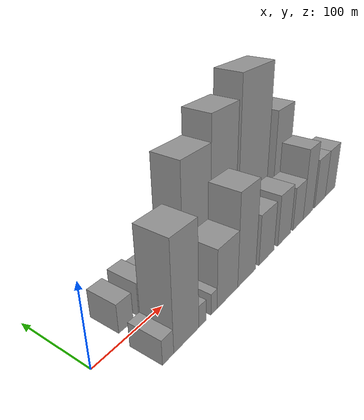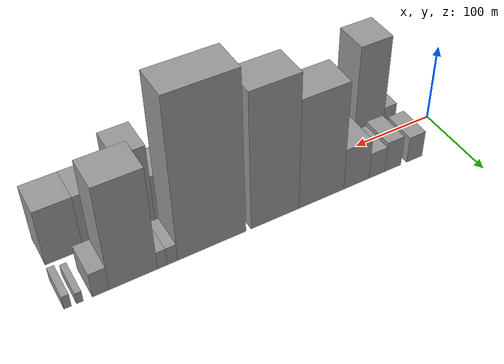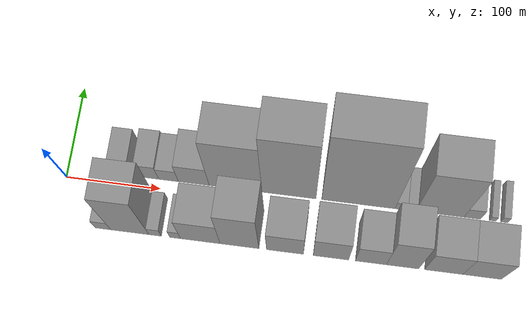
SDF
<sdf version="1.6">
 <world name="default">
  <scene>
   <sky><clouds><speed>12</speed></clouds></sky>
   <ambient>0.4 0.4 0.4 1</ambient>
   <background>0.7 0.7 0.7 1</background>
   <shadows>1</shadows>
  </scene>
  <gravity>0 0 -9.8066</gravity>
  <magnetic_field>6e-06 2.3e-05 -4.2e-05</magnetic_field>
  <physics default="0" name="default_physics" type="ode">
   <ode>
    <solver>
     <type>quick</type>
     <iters>10</iters>
     <sor>1.0</sor>
     <use_dynamic_moi_rescaling>0</use_dynamic_moi_rescaling>
    </solver>
    <constraints>
     <cfm>0</cfm>
     <erp>0.2</erp>
     <contact_max_correcting_vel>100</contact_max_correcting_vel>
     <contact_surface_layer>0.001</contact_surface_layer>
    </constraints>
   </ode>
   <max_step_size>0.004</max_step_size>
   <real_time_factor>1</real_time_factor>
   <real_time_update_rate>250</real_time_update_rate>
  </physics>
  <light name="sun" type="directional">
   <pose>0 0 10 0 0 0</pose>
   <diffuse>0.8 0.8 0.8 1</diffuse>
   <specular>0.2 0.2 0.2 1</specular>
   <attenuation>
    <range>1000</range>
    <constant>0.9</constant>
    <linear>0.01</linear>
    <quadratic>0.001</quadratic>
   </attenuation>
   <direction>-0.5 0.1 -0.9</direction>
  </light>
  <model name="building_1">
   <static>1</static>
   <pose>56.5147 30.0000 0 0.000000 0.000000 1.570796</pose>
   <link name="link">
    <pose>0 0 18.00 0 0 0</pose>
    <collision name="collision"><geometry><box><size>40.0000 21.0294 36.0000</size></box></geometry></collision>
    <visual name="visual">
     <cast_shadows>0</cast_shadows>
     <geometry><box><size>40.0000 21.0294 36.0000</size></box></geometry>
     <material>
      <script>
       <uri>model://grey_wall/materials/scripts</uri>
       <uri>model://grey_wall/materials/textures</uri>
       <name>vrc/grey_wall</name>
      </script>
     </material>
    </visual>
   </link>
  </model>
  <model name="building_2">
   <static>1</static>
   <pose>85.8096 30.0000 0 0.000000 0.000000 1.570796</pose>
   <link name="link">
    <pose>0 0 21.00 0 0 0</pose>
    <collision name="collision"><geometry><box><size>40.0000 21.5605 42.0000</size></box></geometry></collision>
    <visual name="visual">
     <cast_shadows>0</cast_shadows>
     <geometry><box><size>40.0000 21.5605 42.0000</size></box></geometry>
     <material>
      <script>
       <uri>model://grey_wall/materials/scripts</uri>
       <uri>model://grey_wall/materials/textures</uri>
       <name>vrc/grey_wall</name>
      </script>
     </material>
    </visual>
   </link>
  </model>
  <model name="building_3">
   <static>1</static>
   <pose>107.0589 30.0000 0 0.000000 0.000000 1.570796</pose>
   <link name="link">
    <pose>0 0 18.00 0 0 0</pose>
    <collision name="collision"><geometry><box><size>40.0000 20.9381 36.0000</size></box></geometry></collision>
    <visual name="visual">
     <cast_shadows>0</cast_shadows>
     <geometry><box><size>40.0000 20.9381 36.0000</size></box></geometry>
     <material>
      <script>
       <uri>model://grey_wall/materials/scripts</uri>
       <uri>model://grey_wall/materials/textures</uri>
       <name>vrc/grey_wall</name>
      </script>
     </material>
    </visual>
   </link>
  </model>
  <model name="building_4">
   <static>1</static>
   <pose>133.8735 30.0000 0 0.000000 0.000000 1.570796</pose>
   <link name="link">
    <pose>0 0 28.50 0 0 0</pose>
    <collision name="collision"><geometry><box><size>40.0000 32.6911 57.0000</size></box></geometry></collision>
    <visual name="visual">
     <cast_shadows>0</cast_shadows>
     <geometry><box><size>40.0000 32.6911 57.0000</size></box></geometry>
     <material>
      <script>
       <uri>model://grey_wall/materials/scripts</uri>
       <uri>model://grey_wall/materials/textures</uri>
       <name>vrc/grey_wall</name>
      </script>
     </material>
    </visual>
   </link>
  </model>
  <model name="building_5">
   <static>1</static>
   <pose>178.2053 30.0000 0 0.000000 0.000000 1.570796</pose>
   <link name="link">
    <pose>0 0 73.50 0 0 0</pose>
    <collision name="collision"><geometry><box><size>40.0000 55.9724 147.0000</size></box></geometry></collision>
    <visual name="visual">
     <cast_shadows>0</cast_shadows>
     <geometry><box><size>40.0000 55.9724 147.0000</size></box></geometry>
     <material>
      <script>
       <uri>model://grey_wall/materials/scripts</uri>
       <uri>model://grey_wall/materials/textures</uri>
       <name>vrc/grey_wall</name>
      </script>
     </material>
    </visual>
   </link>
  </model>
  <model name="building_6">
   <static>1</static>
   <pose>234.6536 30.0000 0 0.000000 0.000000 1.570796</pose>
   <link name="link">
    <pose>0 0 90.00 0 0 0</pose>
    <collision name="collision"><geometry><box><size>40.0000 56.9243 180.0000</size></box></geometry></collision>
    <visual name="visual">
     <cast_shadows>0</cast_shadows>
     <geometry><box><size>40.0000 56.9243 180.0000</size></box></geometry>
     <material>
      <script>
       <uri>model://grey_wall/materials/scripts</uri>
       <uri>model://grey_wall/materials/textures</uri>
       <name>vrc/grey_wall</name>
      </script>
     </material>
    </visual>
   </link>
  </model>
  <model name="building_7">
   <static>1</static>
   <pose>307.6119 30.0000 0 0.000000 0.000000 1.570796</pose>
   <link name="link">
    <pose>0 0 105.00 0 0 0</pose>
    <collision name="collision"><geometry><box><size>40.0000 76.9921 210.0000</size></box></geometry></collision>
    <visual name="visual">
     <cast_shadows>0</cast_shadows>
     <geometry><box><size>40.0000 76.9921 210.0000</size></box></geometry>
     <material>
      <script>
       <uri>model://grey_wall/materials/scripts</uri>
       <uri>model://grey_wall/materials/textures</uri>
       <name>vrc/grey_wall</name>
      </script>
     </material>
    </visual>
   </link>
  </model>
  <model name="building_8">
   <static>1</static>
   <pose>351.8058 30.0000 0 0.000000 0.000000 1.570796</pose>
   <link name="link">
    <pose>0 0 12.00 0 0 0</pose>
    <collision name="collision"><geometry><box><size>40.0000 11.3957 24.0000</size></box></geometry></collision>
    <visual name="visual">
     <cast_shadows>0</cast_shadows>
     <geometry><box><size>40.0000 11.3957 24.0000</size></box></geometry>
     <material>
      <script>
       <uri>model://grey_wall/materials/scripts</uri>
       <uri>model://grey_wall/materials/textures</uri>
       <name>vrc/grey_wall</name>
      </script>
     </material>
    </visual>
   </link>
  </model>
  <model name="building_9">
   <static>1</static>
   <pose>362.6047 30.0000 0 0.000000 0.000000 1.570796</pose>
   <link name="link">
    <pose>0 0 12.00 0 0 0</pose>
    <collision name="collision"><geometry><box><size>40.0000 10.2021 24.0000</size></box></geometry></collision>
    <visual name="visual">
     <cast_shadows>0</cast_shadows>
     <geometry><box><size>40.0000 10.2021 24.0000</size></box></geometry>
     <material>
      <script>
       <uri>model://grey_wall/materials/scripts</uri>
       <uri>model://grey_wall/materials/textures</uri>
       <name>vrc/grey_wall</name>
      </script>
     </material>
    </visual>
   </link>
  </model>
  <model name="building_10">
   <static>1</static>
   <pose>392.9065 30.0000 0 0.000000 0.000000 1.570796</pose>
   <link name="link">
    <pose>0 0 69.00 0 0 0</pose>
    <collision name="collision"><geometry><box><size>40.0000 50.4016 138.0000</size></box></geometry></collision>
    <visual name="visual">
     <cast_shadows>0</cast_shadows>
     <geometry><box><size>40.0000 50.4016 138.0000</size></box></geometry>
     <material>
      <script>
       <uri>model://grey_wall/materials/scripts</uri>
       <uri>model://grey_wall/materials/textures</uri>
       <name>vrc/grey_wall</name>
      </script>
     </material>
    </visual>
   </link>
  </model>
  <model name="building_11">
   <static>1</static>
   <pose>426.7746 30.0000 0 0.000000 0.000000 1.570796</pose>
   <link name="link">
    <pose>0 0 16.50 0 0 0</pose>
    <collision name="collision"><geometry><box><size>40.0000 17.3346 33.0000</size></box></geometry></collision>
    <visual name="visual">
     <cast_shadows>0</cast_shadows>
     <geometry><box><size>40.0000 17.3346 33.0000</size></box></geometry>
     <material>
      <script>
       <uri>model://grey_wall/materials/scripts</uri>
       <uri>model://grey_wall/materials/textures</uri>
       <name>vrc/grey_wall</name>
      </script>
     </material>
    </visual>
   </link>
  </model>
  <model name="building_12">
   <static>1</static>
   <pose>447.8353 30.0000 0 0.000000 0.000000 1.570796</pose>
   <link name="link">
    <pose>0 0 7.50 0 0 0</pose>
    <collision name="collision"><geometry><box><size>40.0000 6.7868 15.0000</size></box></geometry></collision>
    <visual name="visual">
     <cast_shadows>0</cast_shadows>
     <geometry><box><size>40.0000 6.7868 15.0000</size></box></geometry>
     <material>
      <script>
       <uri>model://grey_wall/materials/scripts</uri>
       <uri>model://grey_wall/materials/textures</uri>
       <name>vrc/grey_wall</name>
      </script>
     </material>
    </visual>
   </link>
  </model>
  <model name="building_13">
   <static>1</static>
   <pose>459.9971 30.0000 0 0.000000 0.000000 1.570796</pose>
   <link name="link">
    <pose>0 0 9.00 0 0 0</pose>
    <collision name="collision"><geometry><box><size>40.0000 7.5367 18.0000</size></box></geometry></collision>
    <visual name="visual">
     <cast_shadows>0</cast_shadows>
     <geometry><box><size>40.0000 7.5367 18.0000</size></box></geometry>
     <material>
      <script>
       <uri>model://grey_wall/materials/scripts</uri>
       <uri>model://grey_wall/materials/textures</uri>
       <name>vrc/grey_wall</name>
      </script>
     </material>
    </visual>
   </link>
  </model>
  <model name="building_14">
   <static>1</static>
   <pose>48.2404 -30.0000 0 0.000000 0.000000 1.570796</pose>
   <link name="link">
    <pose>0 0 15.00 0 0 0</pose>
    <collision name="collision"><geometry><box><size>40.0000 16.4807 30.0000</size></box></geometry></collision>
    <visual name="visual">
     <cast_shadows>0</cast_shadows>
     <geometry><box><size>40.0000 16.4807 30.0000</size></box></geometry>
     <material>
      <script>
       <uri>model://grey_wall/materials/scripts</uri>
       <uri>model://grey_wall/materials/textures</uri>
       <name>vrc/grey_wall</name>
      </script>
     </material>
    </visual>
   </link>
  </model>
  <model name="building_15">
   <static>1</static>
   <pose>76.5183 -30.0000 0 0.000000 0.000000 1.570796</pose>
   <link name="link">
    <pose>0 0 64.50 0 0 0</pose>
    <collision name="collision"><geometry><box><size>40.0000 40.0751 129.0000</size></box></geometry></collision>
    <visual name="visual">
     <cast_shadows>0</cast_shadows>
     <geometry><box><size>40.0000 40.0751 129.0000</size></box></geometry>
     <material>
      <script>
       <uri>model://grey_wall/materials/scripts</uri>
       <uri>model://grey_wall/materials/textures</uri>
       <name>vrc/grey_wall</name>
      </script>
     </material>
    </visual>
   </link>
  </model>
  <model name="building_16">
   <static>1</static>
   <pose>102.9576 -30.0000 0 0.000000 0.000000 1.570796</pose>
   <link name="link">
    <pose>0 0 13.50 0 0 0</pose>
    <collision name="collision"><geometry><box><size>40.0000 12.8036 27.0000</size></box></geometry></collision>
    <visual name="visual">
     <cast_shadows>0</cast_shadows>
     <geometry><box><size>40.0000 12.8036 27.0000</size></box></geometry>
     <material>
      <script>
       <uri>model://grey_wall/materials/scripts</uri>
       <uri>model://grey_wall/materials/textures</uri>
       <name>vrc/grey_wall</name>
      </script>
     </material>
    </visual>
   </link>
  </model>
  <model name="building_17">
   <static>1</static>
   <pose>123.9845 -30.0000 0 0.000000 0.000000 1.570796</pose>
   <link name="link">
    <pose>0 0 13.50 0 0 0</pose>
    <collision name="collision"><geometry><box><size>40.0000 11.2503 27.0000</size></box></geometry></collision>
    <visual name="visual">
     <cast_shadows>0</cast_shadows>
     <geometry><box><size>40.0000 11.2503 27.0000</size></box></geometry>
     <material>
      <script>
       <uri>model://grey_wall/materials/scripts</uri>
       <uri>model://grey_wall/materials/textures</uri>
       <name>vrc/grey_wall</name>
      </script>
     </material>
    </visual>
   </link>
  </model>
  <model name="building_18">
   <static>1</static>
   <pose>150.2553 -30.0000 0 0.000000 0.000000 1.570796</pose>
   <link name="link">
    <pose>0 0 37.50 0 0 0</pose>
    <collision name="collision"><geometry><box><size>40.0000 41.2912 75.0000</size></box></geometry></collision>
    <visual name="visual">
     <cast_shadows>0</cast_shadows>
     <geometry><box><size>40.0000 41.2912 75.0000</size></box></geometry>
     <material>
      <script>
       <uri>model://grey_wall/materials/scripts</uri>
       <uri>model://grey_wall/materials/textures</uri>
       <name>vrc/grey_wall</name>
      </script>
     </material>
    </visual>
   </link>
  </model>
  <model name="building_19">
   <static>1</static>
   <pose>191.0129 -30.0000 0 0.000000 0.000000 1.570796</pose>
   <link name="link">
    <pose>0 0 60.00 0 0 0</pose>
    <collision name="collision"><geometry><box><size>40.0000 40.2239 120.0000</size></box></geometry></collision>
    <visual name="visual">
     <cast_shadows>0</cast_shadows>
     <geometry><box><size>40.0000 40.2239 120.0000</size></box></geometry>
     <material>
      <script>
       <uri>model://grey_wall/materials/scripts</uri>
       <uri>model://grey_wall/materials/textures</uri>
       <name>vrc/grey_wall</name>
      </script>
     </material>
    </visual>
   </link>
  </model>
  <model name="building_20">
   <static>1</static>
   <pose>238.2683 -30.0000 0 0.000000 0.000000 1.570796</pose>
   <link name="link">
    <pose>0 0 34.50 0 0 0</pose>
    <collision name="collision"><geometry><box><size>40.0000 38.2868 69.0000</size></box></geometry></collision>
    <visual name="visual">
     <cast_shadows>0</cast_shadows>
     <geometry><box><size>40.0000 38.2868 69.0000</size></box></geometry>
     <material>
      <script>
       <uri>model://grey_wall/materials/scripts</uri>
       <uri>model://grey_wall/materials/textures</uri>
       <name>vrc/grey_wall</name>
      </script>
     </material>
    </visual>
   </link>
  </model>
  <model name="building_21">
   <static>1</static>
   <pose>285.7348 -30.0000 0 0.000000 0.000000 1.570796</pose>
   <link name="link">
    <pose>0 0 36.00 0 0 0</pose>
    <collision name="collision"><geometry><box><size>40.0000 36.6463 72.0000</size></box></geometry></collision>
    <visual name="visual">
     <cast_shadows>0</cast_shadows>
     <geometry><box><size>40.0000 36.6463 72.0000</size></box></geometry>
     <material>
      <script>
       <uri>model://grey_wall/materials/scripts</uri>
       <uri>model://grey_wall/materials/textures</uri>
       <name>vrc/grey_wall</name>
      </script>
     </material>
    </visual>
   </link>
  </model>
  <model name="building_22">
   <static>1</static>
   <pose>326.9883 -30.0000 0 0.000000 0.000000 1.570796</pose>
   <link name="link">
    <pose>0 0 31.50 0 0 0</pose>
    <collision name="collision"><geometry><box><size>40.0000 31.8606 63.0000</size></box></geometry></collision>
    <visual name="visual">
     <cast_shadows>0</cast_shadows>
     <geometry><box><size>40.0000 31.8606 63.0000</size></box></geometry>
     <material>
      <script>
       <uri>model://grey_wall/materials/scripts</uri>
       <uri>model://grey_wall/materials/textures</uri>
       <name>vrc/grey_wall</name>
      </script>
     </material>
    </visual>
   </link>
  </model>
  <model name="building_23">
   <static>1</static>
   <pose>359.6305 -30.0000 0 0.000000 0.000000 1.570796</pose>
   <link name="link">
    <pose>0 0 52.50 0 0 0</pose>
    <collision name="collision"><geometry><box><size>40.0000 33.4239 105.0000</size></box></geometry></collision>
    <visual name="visual">
     <cast_shadows>0</cast_shadows>
     <geometry><box><size>40.0000 33.4239 105.0000</size></box></geometry>
     <material>
      <script>
       <uri>model://grey_wall/materials/scripts</uri>
       <uri>model://grey_wall/materials/textures</uri>
       <name>vrc/grey_wall</name>
      </script>
     </material>
    </visual>
   </link>
  </model>
  <model name="building_24">
   <static>1</static>
   <pose>401.9308 -30.0000 0 0.000000 0.000000 1.570796</pose>
   <link name="link">
    <pose>0 0 37.50 0 0 0</pose>
    <collision name="collision"><geometry><box><size>40.0000 39.1766 75.0000</size></box></geometry></collision>
    <visual name="visual">
     <cast_shadows>0</cast_shadows>
     <geometry><box><size>40.0000 39.1766 75.0000</size></box></geometry>
     <material>
      <script>
       <uri>model://grey_wall/materials/scripts</uri>
       <uri>model://grey_wall/materials/textures</uri>
       <name>vrc/grey_wall</name>
      </script>
     </material>
    </visual>
   </link>
  </model>
  <model name="building_25">
   <static>1</static>
   <pose>441.2430 -30.0000 0 0.000000 0.000000 1.570796</pose>
   <link name="link">
    <pose>0 0 37.50 0 0 0</pose>
    <collision name="collision"><geometry><box><size>40.0000 39.4479 75.0000</size></box></geometry></collision>
    <visual name="visual">
     <cast_shadows>0</cast_shadows>
     <geometry><box><size>40.0000 39.4479 75.0000</size></box></geometry>
     <material>
      <script>
       <uri>model://grey_wall/materials/scripts</uri>
       <uri>model://grey_wall/materials/textures</uri>
       <name>vrc/grey_wall</name>
      </script>
     </material>
    </visual>
   </link>
  </model>
 </world>
</sdf>
